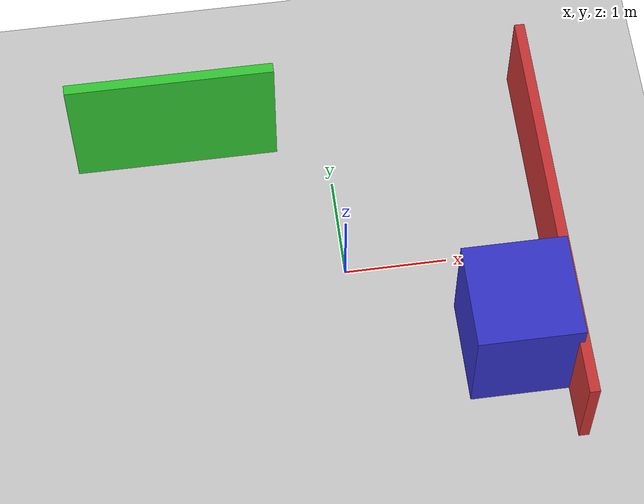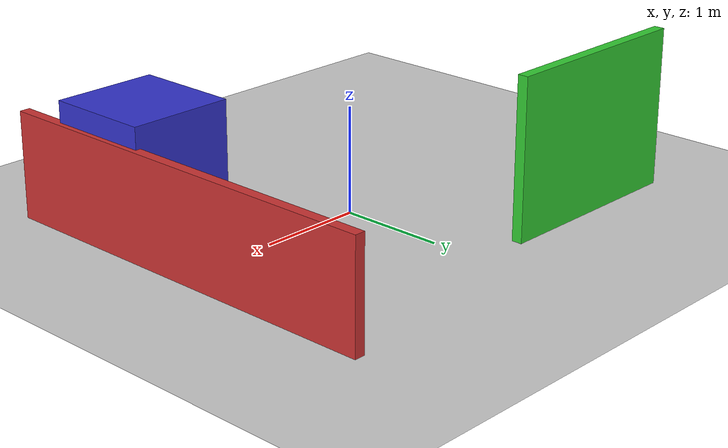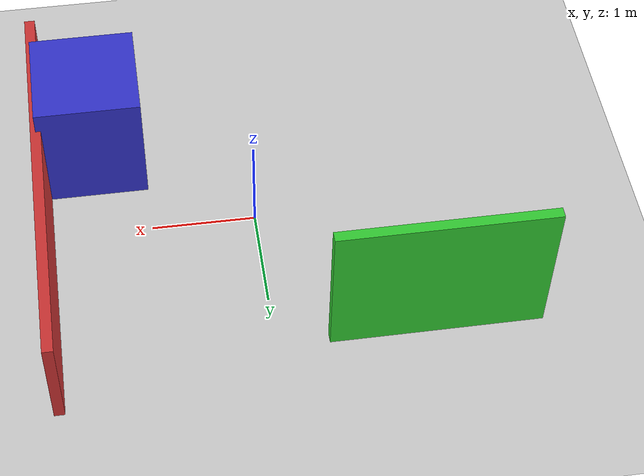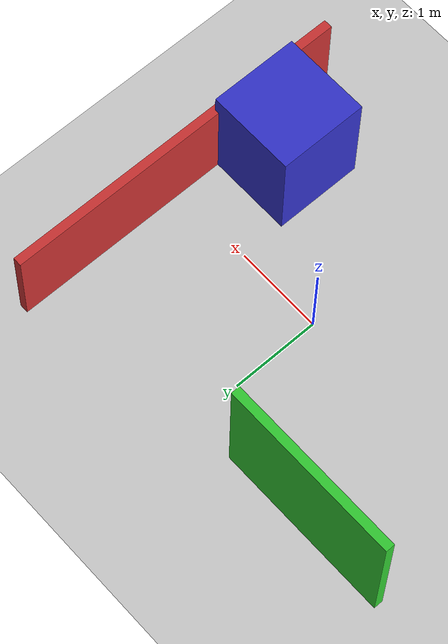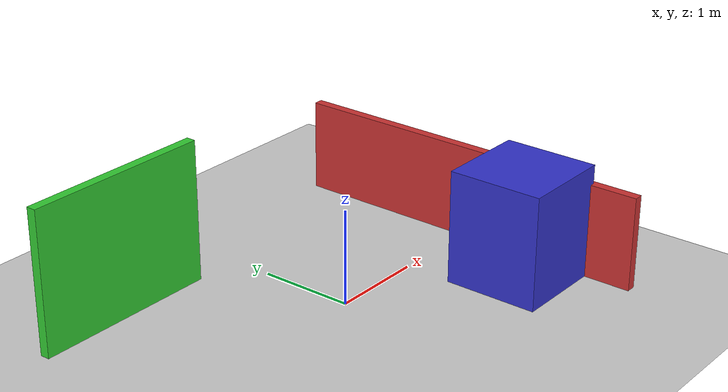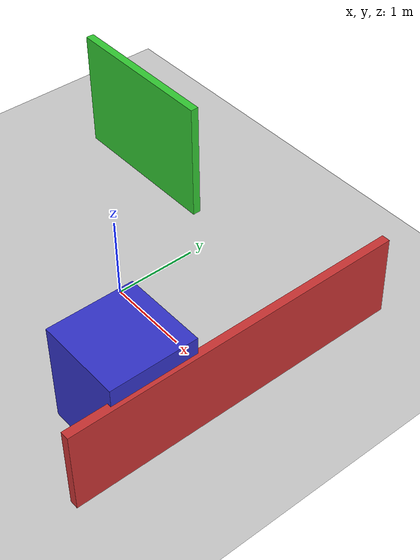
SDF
<?xml version="1.0" ?>
<sdf version="1.9">
  <world name="lidar_test">
    <!-- Sensors system (ОБЯЗАТЕЛЬНО для лидара!) -->
    <plugin filename="gz-sim-sensors-system" name="gz::sim::systems::Sensors"/>

    <!-- Пол -->
    <model name="ground_plane">
      <static>true</static>
      <link name="link">
        <collision name="collision">
          <geometry>
            <plane>
              <normal>0 0 1</normal>
              <size>100 100</size>
            </plane>
          </geometry>
        </collision>
        <visual name="visual">
          <geometry>
            <plane>
              <normal>0 0 1</normal>
              <size>100 100</size>
            </plane>
          </geometry>
          <material>
            <ambient>0.8 0.8 0.8 1</ambient>
            <diffuse>0.8 0.8 0.8 1</diffuse>
          </material>
        </visual>
      </link>
    </model>

    <!-- **ПРЕПЯТСТВИЯ** (стены, кубы) -->
    <model name="wall1">
      <static>true</static>
      <pose>2 0 0.5 0 0 0</pose>
      <link name="link">
        <collision name="collision">
          <geometry>
            <box><size>0.1 4 1</size></box>
          </geometry>
        </collision>
        <visual name="visual">
          <geometry>
            <box><size>0.1 4 1</size></box>
          </geometry>
          <material>
            <diffuse>0.8 0.2 0.2 1</diffuse>
          </material>
        </visual>
      </link>
    </model>

    <model name="wall2">
      <static>true</static>
      <pose>-1.5 1.5 0.75 0 0 0</pose>
      <link name="link">
        <collision name="collision">
          <geometry>
            <box><size>2 0.1 1.5</size></box>
          </geometry>
        </collision>
        <visual name="visual">
          <geometry>
            <box><size>2 0.1 1.5</size></box>
          </geometry>
          <material>
            <diffuse>0.2 0.8 0.2 1</diffuse>
          </material>
        </visual>
      </link>
    </model>

    <model name="box_obstacle">
      <static>true</static>
      <pose>1.5 -1 0.6 0 0 0</pose>
      <link name="link">
        <collision name="collision">
          <geometry>
            <box><size>1 1 1.2</size></box>
          </geometry>
        </collision>
        <visual name="visual">
          <geometry>
            <box><size>1 1 1.2</size></box>
          </geometry>
          <material>
            <diffuse>0.2 0.2 0.8 1</diffuse>
          </material>
        </visual>
      </link>
    </model>

    <!-- Свет -->
    <light type="directional" name="sun">
      <cast_shadows>true</cast_shadows>
      <pose>0 0 10 0 0 0</pose>
      <diffuse>0.8 0.8 0.8 1</diffuse>
      <specular>0.2 0.2 0.2 1</specular>
      <attenuation>
        <range>1000</range>
        <constant>0.9</constant>
        <linear>0.01</linear>
        <quadratic>0.001</quadratic>
      </attenuation>
      <direction>-0.5 0.1 -1.0</direction>
    </light>

    <!-- Физика -->
    <physics name="1ms" type="ignored">
      <max_step_size>0.001</max_step_size>
      <real_time_factor>1.0</real_time_factor>
    </physics>

  </world>
</sdf>
